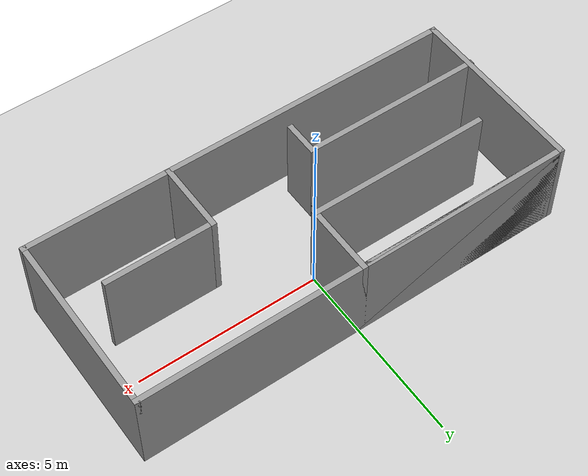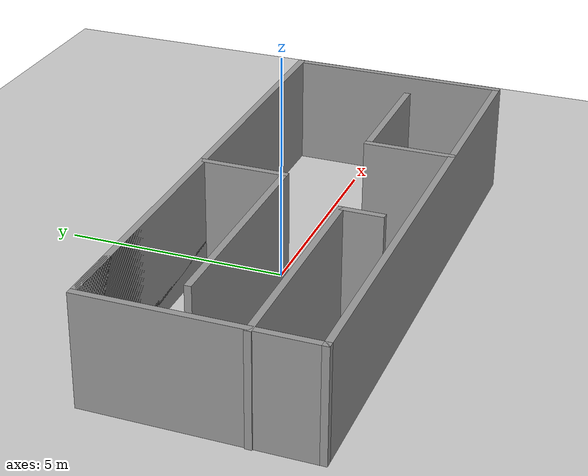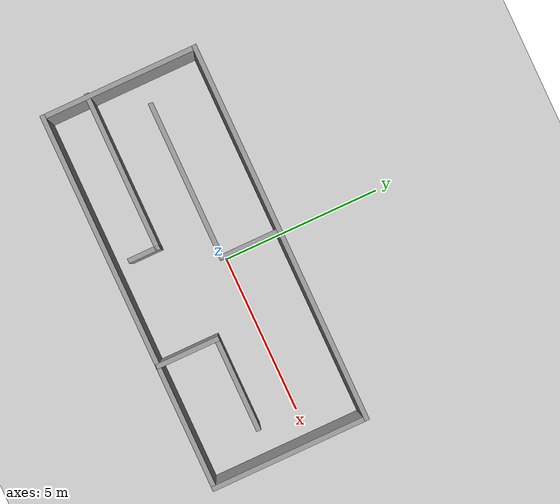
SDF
<sdf version="1.7">
 <world name="__default__">
  <include><uri>model://ground_plane</uri></include>
  <gravity>0 0 -9.81</gravity>
  <magnetic_field>6e-06 2.3e-05 -4.2e-05</magnetic_field>
  <atmosphere type="adiabatic"/>
  <physics type="ode">
   <max_step_size>0.001</max_step_size>
   <real_time_factor>1</real_time_factor>
   <real_time_update_rate>1000</real_time_update_rate>
  </physics>
  <scene><ambient>0.4 0.4 0.4 1</ambient><background>0.7 0.7 0.7 1</background><shadows>1</shadows></scene>
  <audio><device>default</device></audio>
  <spherical_coordinates>
   <surface_model>EARTH_WGS84</surface_model>
   <latitude_deg>0</latitude_deg>
   <longitude_deg>0</longitude_deg>
   <elevation>0</elevation>
   <heading_deg>0</heading_deg>
  </spherical_coordinates>
  <model name="my_room2">
   <pose>-0.048298 0.027057 0 0 -0 0</pose>
   <link name="Wall_0">
    <collision name="Wall_0_Collision">
     <geometry><box><size>12 0.15 2.5</size></box></geometry>
     <pose>0 0 1.25 0 -0 0</pose>
    </collision>
    <visual name="Wall_0_Visual">
     <pose>0 0 1.25 0 -0 0</pose>
     <geometry><box><size>12 0.15 2.5</size></box></geometry>
     <material>
      <script><uri>file://media/materials/scripts/gazebo.material</uri><name>Gazebo/Grey</name></script>
      <ambient>1 1 1 1</ambient>
     </material>
     <meta><layer>0</layer></meta>
    </visual>
    <pose>0.015 1.7125 0 0 -0 0</pose>
   </link>
   <link name="Wall_1">
    <collision name="Wall_1_Collision">
     <geometry><box><size>5 0.15 2.5</size></box></geometry>
     <pose>0 0 1.25 0 -0 0</pose>
    </collision>
    <visual name="Wall_1_Visual">
     <pose>0 0 1.25 0 -0 0</pose>
     <geometry><box><size>5 0.15 2.5</size></box></geometry>
     <material>
      <script><uri>file://media/materials/scripts/gazebo.material</uri><name>Gazebo/Grey</name></script>
      <ambient>1 1 1 1</ambient>
     </material>
     <meta><layer>0</layer></meta>
    </visual>
    <pose>5.94 -0.7125 0 0 -0 -1.5708</pose>
   </link>
   <link name="Wall_11">
    <collision name="Wall_11_Collision">
     <geometry><box><size>2 0.15 2.5</size></box></geometry>
     <pose>0 0 1.25 0 -0 0</pose>
    </collision>
    <visual name="Wall_11_Visual">
     <pose>0 0 1.25 0 -0 0</pose>
     <geometry><box><size>2 0.15 2.5</size></box></geometry>
     <material>
      <script><uri>file://media/materials/scripts/gazebo.material</uri><name>Gazebo/Grey</name></script>
      <ambient>1 1 1 1</ambient>
     </material>
     <meta><layer>0</layer></meta>
    </visual>
    <pose>2.04 -2.1925 0 0 -0 1.5708</pose>
   </link>
   <link name="Wall_12">
    <collision name="Wall_12_Collision">
     <geometry><box><size>3 0.15 2.5</size></box></geometry>
     <pose>0 0 1.25 0 -0 0</pose>
    </collision>
    <visual name="Wall_12_Visual">
     <pose>0 0 1.25 0 -0 0</pose>
     <geometry><box><size>3 0.15 2.5</size></box></geometry>
     <material>
      <script><uri>file://media/materials/scripts/gazebo.material</uri><name>Gazebo/Grey</name></script>
      <ambient>1 1 1 1</ambient>
     </material>
     <meta><layer>0</layer></meta>
    </visual>
    <pose>3.465 -1.2675 0 0 -0 0</pose>
   </link>
   <link name="Wall_2">
    <collision name="Wall_2_Collision">
     <geometry><box><size>12 0.15 2.5</size></box></geometry>
     <pose>0 0 1.25 0 -0 0</pose>
    </collision>
    <visual name="Wall_2_Visual">
     <pose>0 0 1.25 0 -0 0</pose>
     <geometry><box><size>12 0.15 2.5</size></box></geometry>
     <material>
      <script><uri>file://media/materials/scripts/gazebo.material</uri><name>Gazebo/Grey</name></script>
      <ambient>1 1 1 1</ambient>
     </material>
     <meta><layer>0</layer></meta>
    </visual>
    <pose>0.015 -3.1375 0 0 -0 3.14159</pose>
   </link>
   <link name="Wall_3">
    <collision name="Wall_3_Collision">
     <geometry><box><size>5 0.15 2.5</size></box></geometry>
     <pose>0 0 1.25 0 -0 0</pose>
    </collision>
    <visual name="Wall_3_Visual">
     <pose>0 0 1.25 0 -0 0</pose>
     <geometry><box><size>5 0.15 2.5</size></box></geometry>
     <material>
      <script><uri>file://media/materials/scripts/gazebo.material</uri><name>Gazebo/Grey</name></script>
      <ambient>1 1 1 1</ambient>
     </material>
     <meta><layer>0</layer></meta>
    </visual>
    <pose>-5.91 -0.7125 0 0 -0 1.5708</pose>
   </link>
   <link name="Wall_4">
    <collision name="Wall_4_Collision">
     <geometry><box><size>6 0.15 2.5</size></box></geometry>
     <pose>0 0 1.25 0 -0 0</pose>
    </collision>
    <visual name="Wall_4_Visual">
     <pose>0 0 1.25 0 -0 0</pose>
     <geometry><box><size>6 0.15 2.5</size></box></geometry>
     <material>
      <script><uri>file://media/materials/scripts/gazebo.material</uri><name>Gazebo/Grey</name></script>
      <ambient>1 1 1 1</ambient>
     </material>
     <meta><layer>0</layer></meta>
    </visual>
    <pose>-2.985 1.7125 0 0 -0 0</pose>
   </link>
   <link name="Wall_5">
    <collision name="Wall_5_Collision">
     <geometry><box><size>2 0.15 2.5</size></box></geometry>
     <pose>0 0 1.25 0 -0 0</pose>
    </collision>
    <visual name="Wall_5_Visual">
     <pose>0 0 1.25 0 -0 0</pose>
     <geometry><box><size>2 0.15 2.5</size></box></geometry>
     <material>
      <script><uri>file://media/materials/scripts/gazebo.material</uri><name>Gazebo/Grey</name></script>
      <ambient>1 1 1 1</ambient>
     </material>
     <meta><layer>0</layer></meta>
    </visual>
    <pose>-0.06 0.7875 0 0 -0 -1.5708</pose>
   </link>
   <link name="Wall_6">
    <collision name="Wall_6_Collision">
     <geometry><box><size>5 0.15 2.5</size></box></geometry>
     <pose>0 0 1.25 0 -0 0</pose>
    </collision>
    <visual name="Wall_6_Visual">
     <pose>0 0 1.25 0 -0 0</pose>
     <geometry><box><size>5 0.15 2.5</size></box></geometry>
     <material>
      <script><uri>file://media/materials/scripts/gazebo.material</uri><name>Gazebo/Grey</name></script>
      <ambient>1 1 1 1</ambient>
     </material>
     <meta><layer>0</layer></meta>
    </visual>
    <pose>-2.485 -0.1375 0 0 -0 3.14159</pose>
   </link>
   <link name="Wall_8">
    <collision name="Wall_8_Collision">
     <geometry><box><size>5 0.15 2.5</size></box></geometry>
     <pose>0 0 1.25 0 -0 0</pose>
    </collision>
    <visual name="Wall_8_Visual">
     <pose>0 0 1.25 0 -0 0</pose>
     <geometry><box><size>5 0.15 2.5</size></box></geometry>
     <material>
      <script><uri>file://media/materials/scripts/gazebo.material</uri><name>Gazebo/Grey</name></script>
      <ambient>1 1 1 1</ambient>
     </material>
     <meta><layer>0</layer></meta>
    </visual>
    <pose>-3.515 -1.7175 0 0 -0 0</pose>
   </link>
   <link name="Wall_9">
    <collision name="Wall_9_Collision">
     <geometry><box><size>1 0.15 2.5</size></box></geometry>
     <pose>0 0 1.25 0 -0 0</pose>
    </collision>
    <visual name="Wall_9_Visual">
     <pose>0 0 1.25 0 -0 0</pose>
     <geometry><box><size>1 0.15 2.5</size></box></geometry>
     <material>
      <script><uri>file://media/materials/scripts/gazebo.material</uri><name>Gazebo/Grey</name></script>
      <ambient>1 1 1 1</ambient>
     </material>
     <meta><layer>0</layer></meta>
    </visual>
    <pose>-1.09 -2.1425 0 0 -0 -1.5708</pose>
   </link>
   <static>1</static>
  </model>
 </world>
</sdf>
